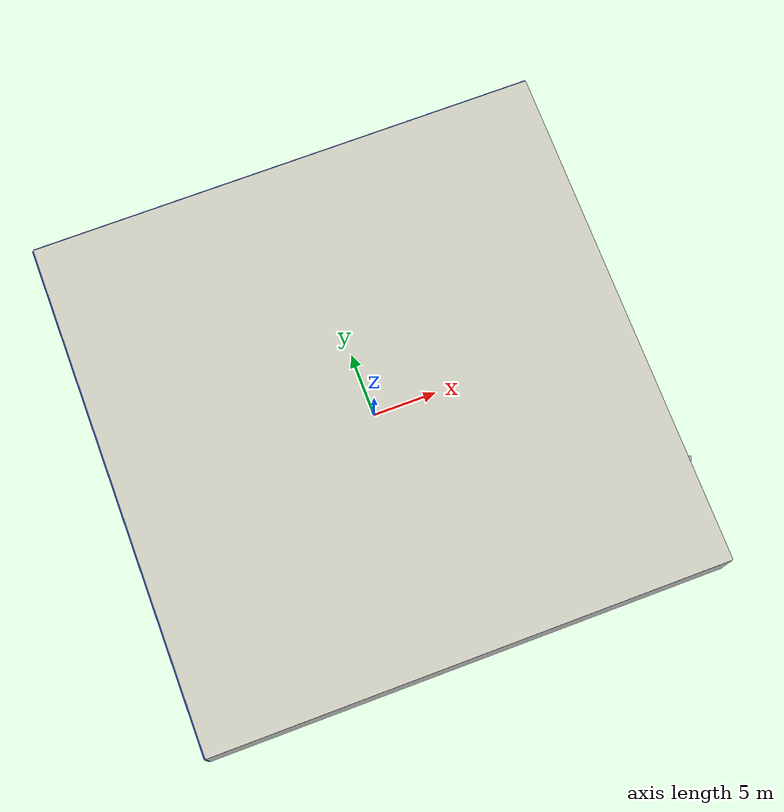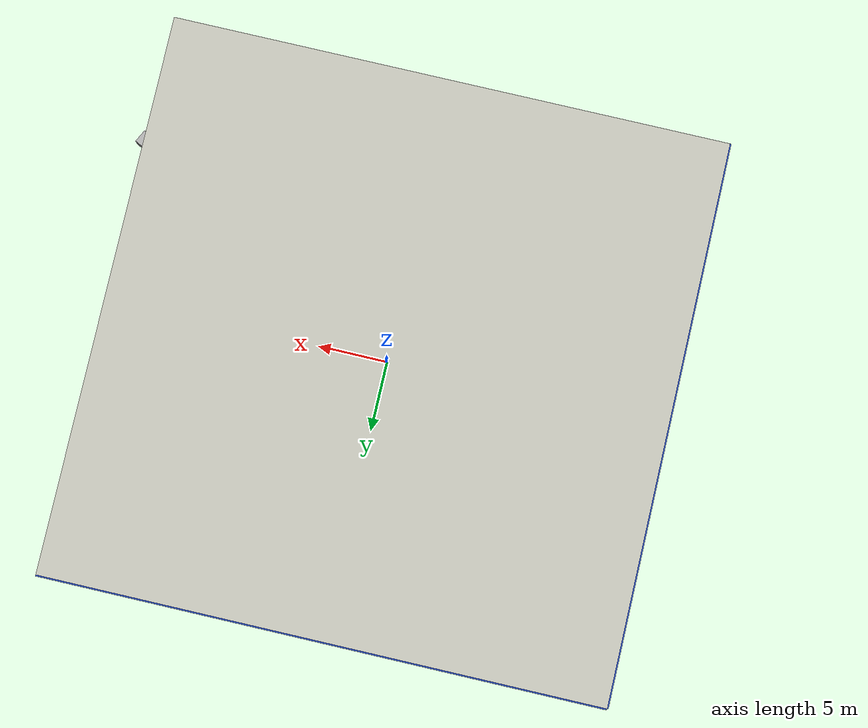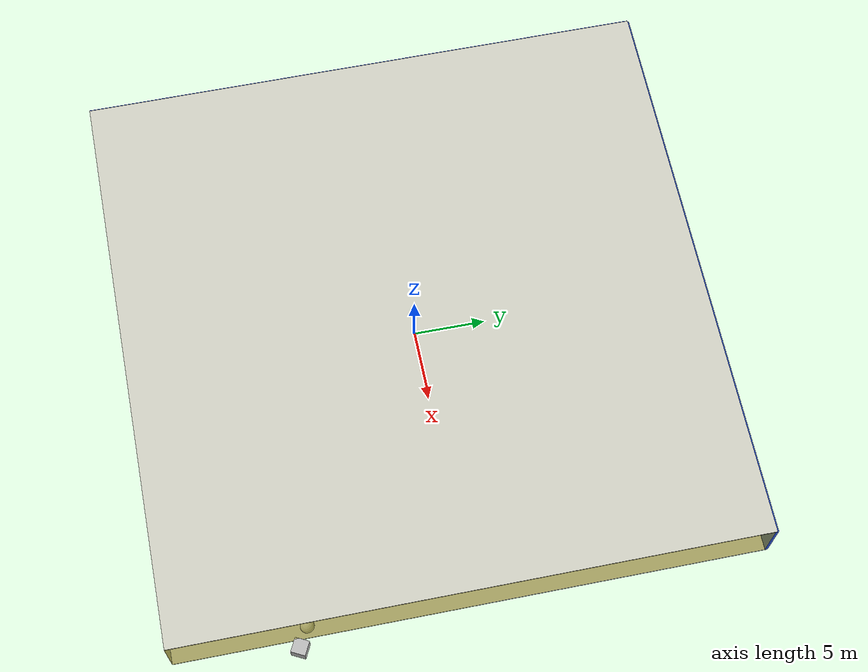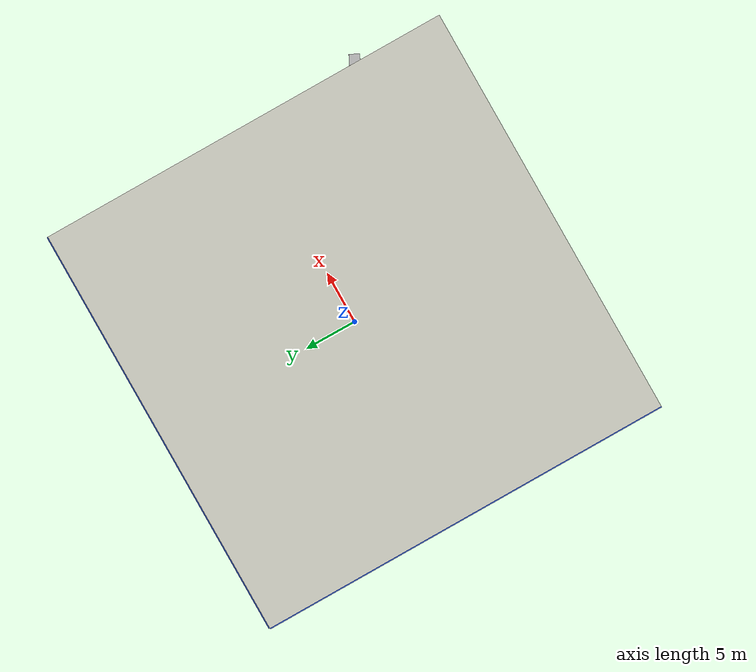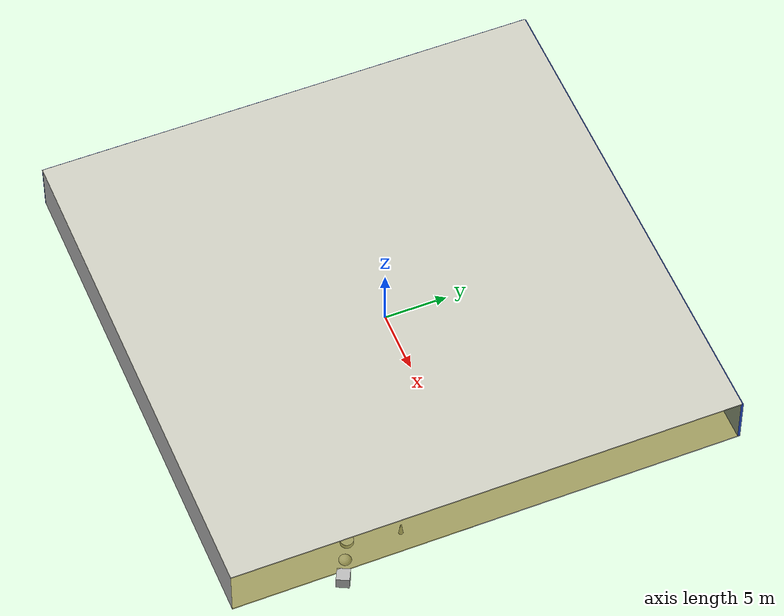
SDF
<sdf version="1.4">
 <world name="default">
  <physics type="ode">
   <max_step_size>0.001</max_step_size>
   <real_time_factor>1</real_time_factor>
   <real_time_update_rate>1000</real_time_update_rate>
   <gravity>0 0 -9.8</gravity>
  </physics>
  <scene><ambient>0.4 0.4 0.4 1</ambient><background>0.7 0.7 0.7 1</background><shadows>1</shadows></scene>
  <model name="Surrounding">
   <static>1</static>
   <link name="Ceiling">
    <collision name="Ceiling_Collision"><geometry><box><size>40 40 0.1</size></box></geometry></collision>
    <visual name="Ceiling_Visual">
     <geometry><box><size>40 40 0.1</size></box></geometry>
     <material>
      <script><uri>file://media/materials/scripts/gazebo.material</uri><name>Gazebo/PaintedWall</name></script>
     </material>
    </visual>
    <pose>0 0 4.05 0 0 0</pose>
   </link>
   <link name="Wall_South">
    <collision name="Wall_South_Collision">
     <geometry><box><size>40 0 4</size></box></geometry>
     <pose>0 0 2 0 -0 0</pose>
    </collision>
    <visual name="Wall_South_Visual">
     <pose>0 0 2 0 -0 0</pose>
     <geometry><box><size>40 0 4</size></box></geometry>
     <material>
      <script><uri>file://media/materials/scripts/gazebo.material</uri><name>Gazebo/PioneerBody</name></script>
     </material>
    </visual>
    <velocity_decay><linear>0</linear><angular>0</angular></velocity_decay>
    <pose>0 -20 0 0 -0 0</pose>
   </link>
   <link name="Wall_East">
    <collision name="Wall_21_Collision">
     <geometry><box><size>40 0 4</size></box></geometry>
     <pose>0 0 2 0 -0 0</pose>
    </collision>
    <visual name="Wall_21_Visual">
     <pose>0 0 2 0 -0 0</pose>
     <geometry><box><size>40 0 4</size></box></geometry>
     <material>
      <script>
       <uri>file://media/materials/scripts/gazebo.material</uri>
       <name>Gazebo/YellowTransparent</name>
      </script>
     </material>
    </visual>
    <velocity_decay><linear>0</linear><angular>0</angular></velocity_decay>
    <pose>20 0 0 0 -0 1.5708</pose>
   </link>
   <link name="Wall_North">
    <collision name="Wall_22_Collision">
     <geometry><box><size>40 0.2 4</size></box></geometry>
     <pose>0 0 2 0 -0 0</pose>
    </collision>
    <visual name="Wall_22_Visual">
     <pose>0 0 2 0 -0 0</pose>
     <geometry><box><size>40 0.2 4</size></box></geometry>
     <material>
      <script><uri>file://media/materials/scripts/gazebo.material</uri><name>Gazebo/BlueGlow</name></script>
     </material>
    </visual>
    <velocity_decay><linear>0</linear><angular>0</angular></velocity_decay>
    <pose>0 20 0 0 -0 0</pose>
   </link>
   <link name="Wall_West">
    <collision name="Wall_23_Collision">
     <geometry><box><size>40 0.2 4</size></box></geometry>
     <pose>0 0 2 0 -0 0</pose>
    </collision>
    <visual name="Wall_23_Visual">
     <pose>0 0 2 0 -0 0</pose>
     <geometry><box><size>40 0.2 4</size></box></geometry>
     <material>
      <script><uri>file://media/materials/scripts/gazebo.material</uri><name>Gazebo/BlueGlow</name></script>
     </material>
    </visual>
    <velocity_decay><linear>0</linear><angular>0</angular></velocity_decay>
    <pose>-20 0 0 0 0 -1.5708</pose>
   </link>
   <link name="Ground_link">
    <collision name="collision">
     <pose>0 0 .05 0 -0 0</pose>
     <geometry><box><size>40 40 0.1</size></box></geometry>
    </collision>
    <visual name="visual">
     <pose>0 0 .05 0 -0 0</pose>
     <geometry><box><size>40 40 0.1</size></box></geometry>
     <material>
      <script><uri>file://media/materials/scripts/gazebo.material</uri><name>Gazebo/LightOff</name></script>
     </material>
    </visual>
   </link>
   <static>1</static>
  </model>
  <spherical_coordinates>
   <surface_model>EARTH_WGS84</surface_model>
   <latitude_deg>0</latitude_deg>
   <longitude_deg>0</longitude_deg>
   <elevation>0</elevation>
   <heading_deg>0</heading_deg>
  </spherical_coordinates>
  <light name="lightball_0" type="diffuse">
   <diffuse>0.8 0.8 0.8 1</diffuse>
   <specular>0.2 0.2 0.2 1</specular>
   <attenuation>
    <range>100</range>
    <constant>0.7</constant>
    <linear>0.01</linear>
    <quadratic>0.001</quadratic>
   </attenuation>
   <direction>-0.5 0.1 -0.9</direction>
   <pose>-3.59978759922 16.1122921972 3.73947283675 0 0 0</pose>
  </light>
  <light name="lightball_1" type="diffuse">
   <diffuse>0.8 0.8 0.8 1</diffuse>
   <specular>0.2 0.2 0.2 1</specular>
   <attenuation>
    <range>100</range>
    <constant>0.7</constant>
    <linear>0.01</linear>
    <quadratic>0.001</quadratic>
   </attenuation>
   <direction>-0.5 0.1 -0.9</direction>
   <pose>4.82223695353 -14.1909070021 2.25515417133 0 0 0</pose>
  </light>
  <light name="lightball_2" type="diffuse">
   <diffuse>0.8 0.8 0.8 1</diffuse>
   <specular>0.2 0.2 0.2 1</specular>
   <attenuation>
    <range>100</range>
    <constant>0.7</constant>
    <linear>0.01</linear>
    <quadratic>0.001</quadratic>
   </attenuation>
   <direction>-0.5 0.1 -0.9</direction>
   <pose>-14.6952027911 14.0551638574 1.46375408794 0 0 0</pose>
  </light>
  <light name="lightball_3" type="diffuse">
   <diffuse>0.8 0.8 0.8 1</diffuse>
   <specular>0.2 0.2 0.2 1</specular>
   <attenuation>
    <range>100</range>
    <constant>0.7</constant>
    <linear>0.01</linear>
    <quadratic>0.001</quadratic>
   </attenuation>
   <direction>-0.5 0.1 -0.9</direction>
   <pose>7.41868505287 -14.341333114 3.70472558847 0 0 0</pose>
  </light>
  <light name="lightball_4" type="diffuse">
   <diffuse>0.8 0.8 0.8 1</diffuse>
   <specular>0.2 0.2 0.2 1</specular>
   <attenuation>
    <range>100</range>
    <constant>0.7</constant>
    <linear>0.01</linear>
    <quadratic>0.001</quadratic>
   </attenuation>
   <direction>-0.5 0.1 -0.9</direction>
   <pose>17.93685085 -11.9155925888 2.69207705803 0 0 0</pose>
  </light>
  <light name="lightball_5" type="diffuse">
   <diffuse>0.8 0.8 0.8 1</diffuse>
   <specular>0.2 0.2 0.2 1</specular>
   <attenuation>
    <range>100</range>
    <constant>0.7</constant>
    <linear>0.01</linear>
    <quadratic>0.001</quadratic>
   </attenuation>
   <direction>-0.5 0.1 -0.9</direction>
   <pose>-2.1729763775 19.6024881292 2.35108397031 0 0 0</pose>
  </light>
  <light name="lightball_6" type="diffuse">
   <diffuse>0.8 0.8 0.8 1</diffuse>
   <specular>0.2 0.2 0.2 1</specular>
   <attenuation>
    <range>100</range>
    <constant>0.7</constant>
    <linear>0.01</linear>
    <quadratic>0.001</quadratic>
   </attenuation>
   <direction>-0.5 0.1 -0.9</direction>
   <pose>-10.1486709801 -13.8378295322 0.94504478266 0 0 0</pose>
  </light>
  <light name="lightball_7" type="diffuse">
   <diffuse>0.8 0.8 0.8 1</diffuse>
   <specular>0.2 0.2 0.2 1</specular>
   <attenuation>
    <range>100</range>
    <constant>0.7</constant>
    <linear>0.01</linear>
    <quadratic>0.001</quadratic>
   </attenuation>
   <direction>-0.5 0.1 -0.9</direction>
   <pose>6.0609115139 -10.2017921867 0.517580330567 0 0 0</pose>
  </light>
  <light name="lightball_8" type="diffuse">
   <diffuse>0.8 0.8 0.8 1</diffuse>
   <specular>0.2 0.2 0.2 1</specular>
   <attenuation>
    <range>100</range>
    <constant>0.7</constant>
    <linear>0.01</linear>
    <quadratic>0.001</quadratic>
   </attenuation>
   <direction>-0.5 0.1 -0.9</direction>
   <pose>-4.13397346651 -19.9605384463 0.818124389056 0 0 0</pose>
  </light>
  <light name="lightball_9" type="diffuse">
   <diffuse>0.8 0.8 0.8 1</diffuse>
   <specular>0.2 0.2 0.2 1</specular>
   <attenuation>
    <range>100</range>
    <constant>0.7</constant>
    <linear>0.01</linear>
    <quadratic>0.001</quadratic>
   </attenuation>
   <direction>-0.5 0.1 -0.9</direction>
   <pose>19.7161191291 -8.50390620736 1.66974048545 0 0 0</pose>
  </light>
  <include><uri>model://cabinet</uri><pose>-17.8643057234 -9.61900589071 0 0 0 1.55541438049</pose></include>
  <include><uri>model://table</uri><pose>-16.9405882564 -1.8915181108 0 0 0 1.67322939616</pose></include>
  <include><uri>model://table</uri><pose>-12.2219160333 -10.4995190361 0 0 0 0.586495613262</pose></include>
  <include>
   <uri>model://textured_shapes</uri>
   <pose>-12.5940953509 -7.84925695456 0 0 0 1.25948185113</pose>
  </include>
  <include><uri>model://table</uri><pose>-11.5949227562 -5.28157797482 0 0 0 3.08962456884</pose></include>
  <include>
   <uri>model://construction_cone</uri>
   <pose>-11.8301498259 16.2958429478 0 0 0 1.03612341516</pose>
  </include>
  <include>
   <uri>model://robocup_3Dsim_goal</uri>
   <pose>-5.12231776766 6.81332930067 0 0 0 0.337951023796</pose>
  </include>
  <include><uri>model://table</uri><pose>-5.55329234726 15.9768414123 0 0 0 2.26235329994</pose></include>
  <include><uri>model://cabinet</uri><pose>-4.46301603768 18.6940733187 0 0 0 2.74567145685</pose></include>
  <include><uri>model://cabinet</uri><pose>-2.74402658232 -8.53761774434 0 0 0 2.75933640721</pose></include>
  <include>
   <uri>model://textured_shapes</uri>
   <pose>-3.02462754056 13.2605055827 0 0 0 1.17299649903</pose>
  </include>
  <include>
   <uri>model://construction_cone</uri>
   <pose>0.367983020462 -18.1377400072 0 0 0 2.01215964272</pose>
  </include>
  <include>
   <uri>model://textured_shapes</uri>
   <pose>1.2293364729 -13.8816087245 0 0 0 1.76179875722</pose>
  </include>
  <include><uri>model://cabinet</uri><pose>0.797131618288 4.06551331943 0 0 0 1.6982895484</pose></include>
  <include>
   <uri>model://construction_cone</uri>
   <pose>4.32298874069 -13.7450510424 0 0 0 2.78773838022</pose>
  </include>
  <include>
   <uri>model://textured_shapes</uri>
   <pose>4.52098826444 8.70001671212 0 0 0 1.43407824586</pose>
  </include>
  <include>
   <uri>model://construction_cone</uri>
   <pose>6.45868836637 -10.5999789117 0 0 0 2.68443416459</pose>
  </include>
  <include>
   <uri>model://construction_cone</uri>
   <pose>6.499851378 12.396378949 0 0 0 1.9649806995</pose>
  </include>
  <include><uri>model://table</uri><pose>9.57699747252 9.21205988585 0 0 0 0.65994663824</pose></include>
  <include><uri>model://cabinet</uri><pose>13.2677995249 -8.33150453397 0 0 0 0.725364921636</pose></include>
  <include>
   <uri>model://textured_shapes</uri>
   <pose>19.1922838953 -10.9736206409 0 0 0 1.10334287386</pose>
  </include>
  <include>
   <uri>model://construction_cone</uri>
   <pose>18.5336895959 -6.34791787296 0 0 0 0.511364433389</pose>
  </include>
 </world>
</sdf>

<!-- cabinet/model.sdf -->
<sdf version="1.5">
  <model name="cabinet">
    <static>true</static>
    <link name="cabinet_bottom_plate">
      <inertial>
        <pose>0 0 -1 0 0 0</pose>
        <inertia>
          <ixx>2.050000</ixx>
          <ixy>0</ixy>
          <ixz>0</ixz>
          <iyy>2.050000</iyy>
          <iyz>0</iyz>
          <izz>2.050000</izz>
        </inertia>
        <mass>25.000000</mass>
      </inertial>
      <collision name="cabinet_bottom_plate_geom">
        <pose>0 0 0.010000 0 0 0</pose>
        <geometry>
          <box>
            <size>0.450000 0.450000 0.020000</size>
          </box>
        </geometry>
      </collision>
      <visual name="cabinet_bottom_plate_geom_visual">
        <pose>0 0 0.010000 0 0 0</pose>
        <geometry>
          <box>
            <size>0.450000 0.450000 0.020000</size>
          </box>
        </geometry>
        <material>
          <script>
            <uri>model://media/materials/scripts/gazebo.material</uri>
            <name>Gazebo/Wood</name>
          </script>
        </material>
      </visual>
      <collision name="cabinet_bottom_plate_geom_cabinet_back_plate">
        <pose>0.235000 0 0.510000 0 0 0</pose>
        <geometry>
          <box>
            <size>0.020000 0.450000 1.020000</size>
          </box>
        </geometry>
      </collision>
      <visual name="cabinet_bottom_plate_geom_cabinet_back_plate_visual">
        <pose>0.235000 0 0.510000 0 0 0</pose>
        <geometry>
          <box>
            <size>0.020000 0.450000 1.020000</size>
          </box>
        </geometry>
        <material>
          <script>
            <uri>model://media/materials/scripts/gazebo.material</uri>
            <name>Gazebo/Wood</name>
          </script>
        </material>
      </visual>
      <collision name="cabinet_bottom_plate_geom_cabinet_left_plate">
        <pose>0 0.235000 0.510000 0 0 0</pose>
        <geometry>
          <box>
            <size>0.450000 0.020000 1.020000</size>
          </box>
        </geometry>
      </collision>
      <visual name="cabinet_bottom_plate_geom_cabinet_left_plate_visual">
        <pose>0 0.235000 0.510000 0 0 0</pose>
        <geometry>
          <box>
            <size>0.450000 0.020000 1.020000</size>
          </box>
        </geometry>
        <material>
          <script>
            <uri>model://media/materials/scripts/gazebo.material</uri>
            <name>Gazebo/Wood</name>
          </script>
        </material>
      </visual>
      <collision name="cabinet_bottom_plate_geom_cabinet_middle_plate">
        <pose>0 0 0.510000 0 0 0</pose>
        <geometry>
          <box>
            <size>0.450000 0.450000 0.020000</size>
          </box>
        </geometry>
      </collision>
      <visual name="cabinet_bottom_plate_geom_cabinet_middle_plate_visual">
        <pose>0 0 0.510000 0 0 0</pose>
        <geometry>
          <box>
            <size>0.450000 0.450000 0.020000</size>
          </box>
        </geometry>
        <material>
          <script>
            <uri>model://media/materials/scripts/gazebo.material</uri>
            <name>Gazebo/Wood</name>
          </script>
        </material>
      </visual>
      <collision name="cabinet_bottom_plate_geom_cabinet_right_plate">
        <pose>0 -0.235000 0.510000 0 0 0</pose>
        <geometry>
          <box>
            <size>0.450000 0.020000 1.020000</size>
          </box>
        </geometry>
      </collision>
      <visual name="cabinet_bottom_plate_geom_cabinet_right_plate_visual">
        <pose>0 -0.235000 0.510000 0 0 0</pose>
        <geometry>
          <box>
            <size>0.450000 0.020000 1.020000</size>
          </box>
        </geometry>
        <material>
          <script>
            <uri>model://media/materials/scripts/gazebo.material</uri>
            <name>Gazebo/Wood</name>
          </script>
        </material>
      </visual>
      <collision name="cabinet_bottom_plate_geom_cabinet_top_plate">
        <pose>0 0 1.010000 0 0 0</pose>
        <geometry>
          <box>
            <size>0.450000 0.450000 0.020000</size>
          </box>
        </geometry>
      </collision>
      <visual name="cabinet_bottom_plate_geom_cabinet_top_plate_visual">
        <pose>0 0 1.010000 0 0 0</pose>
        <geometry>
          <box>
            <size>0.450000 0.450000 0.020000</size>
          </box>
        </geometry>
        <material>
          <script>
            <uri>model://media/materials/scripts/gazebo.material</uri>
            <name>Gazebo/Wood</name>
          </script>
        </material>
      </visual>
    </link>
  </model>
</sdf>

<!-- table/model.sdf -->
<sdf version="1.5">
  <model name="table">
    <static>true</static>
    <link name="link">
      <collision name="surface">
        <pose>0 0 1.0 0 0 0</pose>
        <geometry>
          <box>
            <size>1.5 0.8 0.03</size>
          </box>
        </geometry>
        <surface>
          <friction>
            <ode>
              <mu>0.6</mu>
              <mu2>0.6</mu2>
            </ode>
          </friction>
        </surface>
      </collision>
      <visual name="visual1">
        <pose>0 0 1.0 0 0 0</pose>
        <geometry>
          <box>
            <size>1.5 0.8 0.03</size>
          </box>
        </geometry>
        <material>
          <script>
            <uri>model://media/materials/scripts/gazebo.material</uri>
            <name>Gazebo/Wood</name>
          </script>
        </material>
      </visual>
      <collision name="front_left_leg">
        <pose>0.68 0.38 0.5 0 0 0</pose>
        <geometry>
          <cylinder>
            <radius>0.02</radius>
            <length>1.0</length>
          </cylinder>
        </geometry>
      </collision>
      <visual name="front_left_leg">
        <pose>0.68 0.38 0.5 0 0 0</pose>
        <geometry>
          <cylinder>
            <radius>0.02</radius>
            <length>1.0</length>
          </cylinder>
        </geometry>
        <material>
          <script>
            <uri>model://media/materials/scripts/gazebo.material</uri>
            <name>Gazebo/Grey</name>
          </script>
        </material>
      </visual>
      <collision name="front_right_leg">
        <pose>0.68 -0.38 0.5 0 0 0</pose>
        <geometry>
          <cylinder>
            <radius>0.02</radius>
            <length>1.0</length>
          </cylinder>
        </geometry>
      </collision>
      <visual name="front_right_leg">
        <pose>0.68 -0.38 0.5 0 0 0</pose>
        <geometry>
          <cylinder>
            <radius>0.02</radius>
            <length>1.0</length>
          </cylinder>
        </geometry>
        <material>
          <script>
            <uri>model://media/materials/scripts/gazebo.material</uri>
            <name>Gazebo/Grey</name>
          </script>
        </material>
      </visual>
      <collision name="back_right_leg">
        <pose>-0.68 -0.38 0.5 0 0 0</pose>
        <geometry>
          <cylinder>
            <radius>0.02</radius>
            <length>1.0</length>
          </cylinder>
        </geometry>
      </collision>
      <visual name="back_right_leg">
        <pose>-0.68 -0.38 0.5 0 0 0</pose>
        <geometry>
          <cylinder>
            <radius>0.02</radius>
            <length>1.0</length>
          </cylinder>
        </geometry>
        <material>
          <script>
            <uri>model://media/materials/scripts/gazebo.material</uri>
            <name>Gazebo/Grey</name>
          </script>
        </material>
      </visual>
      <collision name="back_left_leg">
        <pose>-0.68 0.38 0.5 0 0 0</pose>
        <geometry>
          <cylinder>
            <radius>0.02</radius>
            <length>1.0</length>
          </cylinder>
        </geometry>
      </collision>
      <visual name="back_left_leg">
        <pose>-0.68 0.38 0.5 0 0 0</pose>
        <geometry>
          <cylinder>
            <radius>0.02</radius>
            <length>1.0</length>
          </cylinder>
        </geometry>
        <material>
          <script>
            <uri>model://media/materials/scripts/gazebo.material</uri>
            <name>Gazebo/Grey</name>
          </script>
        </material>
      </visual>
    </link>
  </model>
</sdf>

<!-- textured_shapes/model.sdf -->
<sdf version="1.6">
  <model name="textured_shapes">
    <pose>0 0 0.5 0 0 0</pose>
    <link name="box">
      <pose>0 -1.5 0 0 0 0</pose>
      <collision name="collision">
        <geometry>
          <box>
            <size>1 1 1</size>
          </box>
        </geometry>
      </collision>
      <visual name="visual">
        <geometry>
          <box>
            <size>1 1 1</size>
          </box>
        </geometry>
        <material>
          <script>
            <uri>model://../model_source/models/textured_shapes/materials/scripts</uri>
            <uri>model://../model_source/models/textured_shapes/materials/textures</uri>
            <name>TexturedShape/Squares</name>
          </script>
        </material>
      </visual>
    </link>
    <link name="sphere">
      <collision name="collision">
        <geometry>
          <sphere>
            <radius>0.5</radius>
          </sphere>
        </geometry>
      </collision>
      <visual name="visual">
        <geometry>
          <sphere>
            <radius>0.5</radius>
          </sphere>
        </geometry>
        <material>
          <script>
            <uri>model://../model_source/models/textured_shapes/materials/scripts</uri>
            <uri>model://../model_source/models/textured_shapes/materials/textures</uri>
            <name>TexturedShape/Squares</name>
          </script>
        </material>
      </visual>
    </link>
    <link name="cylinder">
      <pose>0 1.5 0 0 0 0</pose>
      <collision name="collision">
        <geometry>
          <cylinder>
            <radius>0.5</radius>
            <length>1</length>
          </cylinder>
        </geometry>
      </collision>
      <visual name="visual">
        <geometry>
          <cylinder>
            <radius>0.5</radius>
            <length>1</length>
          </cylinder>
        </geometry>
        <material>
          <script>
            <uri>model://../model_source/models/textured_shapes/materials/scripts</uri>
            <uri>model://../model_source/models/textured_shapes/materials/textures</uri>
            <name>TexturedShape/Squares</name>
          </script>
        </material>
      </visual>
    </link>
  </model>
</sdf>

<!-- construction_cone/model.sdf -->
<sdf version="1.5">
  <model name="Construction Cone">
    <link name="link">
      <collision name="collision">
        <geometry>
          <mesh>
            <scale>10 10 10</scale>
            <uri>file://isr-testbed/construction_cone/meshes/construction_cone.dae</uri>
          </mesh>
        </geometry>
      </collision>
      <visual name="visual">
        <geometry>
          <mesh>
            <scale>10 10 10</scale>
            <uri>file://isr-testbed/construction_cone/meshes/construction_cone.dae</uri>
          </mesh>
        </geometry>
      </visual>
    </link>
  </model>
</sdf>

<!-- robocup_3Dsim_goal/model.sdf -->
<sdf version="1.5">
  <model name="robocup_3d_goal">
    <static>true</static>
    <link name="left_post">
      <pose>0 1.05 0.45 0 0 0</pose>
      <collision name="collision">
        <geometry>
          <cylinder>
            <radius>0.05</radius>
            <length>0.9</length>
          </cylinder>
        </geometry>
      </collision>
      <visual name="visual">
        <geometry>
          <cylinder>
            <radius>0.05</radius>
            <length>0.9</length>
          </cylinder>
        </geometry>
        <material>
          <script>
            <uri>file://media/materials/scripts/gazebo.material</uri>
            <name>Gazebo/ZincYellow</name>
          </script>
        </material>
      </visual>
    </link>
    <link name="left_support_horiz_lower">
      <pose>0.30 1.05 0.01 0 0 0</pose>
      <collision name="collision">
        <geometry>
          <box>
            <size>0.50 0.02 0.02</size>
          </box>
        </geometry>
      </collision>
      <visual name="visual">
        <geometry>
          <box>
            <size>0.50 0.02 0.02</size>
          </box>
        </geometry>
        <material>
          <script>
            <uri>file://media/materials/scripts/gazebo.material</uri>
            <name>Gazebo/White</name>
          </script>
        </material>
      </visual>
    </link>
    <link name="left_support_horiz_upper">
      <pose>0.30 1.05 0.79 0 0 0</pose>
      <collision name="collision">
        <geometry>
          <box>
            <size>0.50 0.02 0.02</size>
          </box>
        </geometry>
      </collision>
      <visual name="visual">
        <geometry>
          <box>
            <size>0.50 0.02 0.02</size>
          </box>
        </geometry>
        <material>
          <script>
            <uri>file://media/materials/scripts/gazebo.material</uri>
            <name>Gazebo/White</name>
          </script>
        </material>
      </visual>
    </link>
    <link name="left_support_vertical">
      <pose>0.56 1.05 0.4 0 1.5708 0</pose>
      <collision name="collision">
        <geometry>
          <box>
            <size>0.80 0.02 0.02</size>
          </box>
        </geometry>
      </collision>
      <visual name="visual">
        <geometry>
          <box>
            <size>0.80 0.02 0.02</size>
          </box>
        </geometry>
        <material>
          <script>
            <uri>file://media/materials/scripts/gazebo.material</uri>
            <name>Gazebo/White</name>
          </script>
        </material>
      </visual>
    </link>
    <link name="right_support_horiz_lower">
      <pose>0.30 -1.05 0.01 0 0 0</pose>
      <collision name="collision">
        <geometry>
          <box>
            <size>0.50 0.02 0.02</size>
          </box>
        </geometry>
      </collision>
      <visual name="visual">
        <geometry>
          <box>
            <size>0.50 0.02 0.02</size>
          </box>
        </geometry>
        <material>
          <script>
            <uri>file://media/materials/scripts/gazebo.material</uri>
            <name>Gazebo/White</name>
          </script>
        </material>
      </visual>
    </link>
    <link name="right_support_horiz_upper">
      <pose>0.30 -1.05 0.79 0 0 0</pose>
      <collision name="collision">
        <geometry>
          <box>
            <size>0.50 0.02 0.02</size>
          </box>
        </geometry>
      </collision>
      <visual name="visual">
        <geometry>
          <box>
            <size>0.50 0.02 0.02</size>
          </box>
        </geometry>
        <material>
          <script>
            <uri>file://media/materials/scripts/gazebo.material</uri>
            <name>Gazebo/White</name>
          </script>
        </material>
      </visual>
    </link>
    <link name="right_support_vertical">
      <pose>0.56 -1.05 0.4 0 1.5708 0</pose>
      <collision name="collision">
        <geometry>
          <box>
            <size>0.80 0.02 0.02</size>
          </box>
        </geometry>
      </collision>
      <visual name="visual">
        <geometry>
          <box>
            <size>0.80 0.02 0.02</size>
          </box>
        </geometry>
        <material>
          <script>
            <uri>file://media/materials/scripts/gazebo.material</uri>
            <name>Gazebo/White</name>
          </script>
        </material>
      </visual>
    </link>
    <link name="center_support_horiz_lower">
      <pose>0.56 0 0.01 0 1.5708 0</pose>
      <collision name="collision">
        <geometry>
          <box>
            <size>0.02 2.08 0.02</size>
          </box>
        </geometry>
      </collision>
      <visual name="visual">
        <geometry>
          <box>
            <size>0.02 2.08 0.02</size>
          </box>
        </geometry>
        <material>
          <script>
            <uri>file://media/materials/scripts/gazebo.material</uri>
            <name>Gazebo/White</name>
          </script>
        </material>
      </visual>
    </link>
    <link name="center_support_horiz_upper">
      <pose>0.56 0 0.79 0 1.5708 0</pose>
      <collision name="collision">
        <geometry>
          <box>
            <size>0.02 2.08 0.02</size>
          </box>
        </geometry>
      </collision>
      <visual name="visual">
        <geometry>
          <box>
            <size>0.02 2.08 0.02</size>
          </box>
        </geometry>
        <material>
          <script>
            <uri>file://media/materials/scripts/gazebo.material</uri>
            <name>Gazebo/White</name>
          </script>
        </material>
      </visual>
    </link>
    <link name="right_post">
      <pose>0 -1.05 0.45 0 0 0</pose>
      <collision name="collision">
        <geometry>
          <cylinder>
            <radius>0.05</radius>
            <length>0.9</length>
          </cylinder>
        </geometry>
      </collision>
      <visual name="visual">
        <geometry>
          <cylinder>
            <radius>0.05</radius>
            <length>0.9</length>
          </cylinder>
        </geometry>
        <material>
          <script>
            <uri>file://media/materials/scripts/gazebo.material</uri>
            <name>Gazebo/ZincYellow</name>
          </script>
        </material>
      </visual>
    </link>
    <link name="crossbar">
      <pose>0 0 0.85 1.57 1.57 0</pose>
      <collision name="collision">
        <geometry>
          <cylinder>
            <radius>0.05</radius>
            <length>2.0</length>
          </cylinder>
        </geometry>
      </collision>
      <visual name="visual">
        <geometry>
          <cylinder>
            <radius>0.05</radius>
            <length>2.0</length>
          </cylinder>
        </geometry>
        <material>
          <script>
            <uri>file://media/materials/scripts/gazebo.material</uri>
            <name>Gazebo/ZincYellow</name>
          </script>
        </material>
      </visual>
    </link>
    <link name="center_net">
      <pose>0.56 0 0.40 0 0 0</pose>
      <collision name="collision">
        <geometry>
          <box>
            <size>0.01 2.1 0.80</size>
          </box>
        </geometry>
      </collision>
      <visual name="visual">
        <geometry>
          <box>
            <size>0.01 2.1 0.80</size>
          </box>
        </geometry>
        <material>
          <script>
            <uri>model://../model_source/models/robocup09_spl_field/materials/scripts/</uri>
            <uri>model://../model_source/models/robocup09_spl_field/materials/textures/</uri>
            <name>RoboCup/Net</name>
          </script>
        </material>
      </visual>
    </link>
    <link name="left_net">
      <pose>0.30 1.05 0.40 0 0 0</pose>
      <collision name="collision">
        <geometry>
          <box>
            <size>0.50 0.01 0.76</size>
          </box>
        </geometry>
      </collision>
      <visual name="visual">
        <geometry>
          <box>
            <size>0.50 0.01 0.76</size>
          </box>
        </geometry>
        <material>
          <script>
            <uri>model://../model_source/models/robocup09_spl_field/materials/scripts/</uri>
            <uri>model://../model_source/models/robocup09_spl_field/materials/textures/</uri>
            <name>RoboCup/Net</name>
          </script>
        </material>
      </visual>
    </link>
    <link name="right_net">
      <pose>0.30 -1.05 0.40 0 0 0</pose>
      <collision name="collision">
        <geometry>
          <box>
            <size>0.50 0.01 0.76</size>
          </box>
        </geometry>
      </collision>
      <visual name="visual">
        <geometry>
          <box>
            <size>0.50 0.01 0.76</size>
          </box>
        </geometry>
        <material>
          <script>
            <uri>model://../model_source/models/robocup09_spl_field/materials/scripts/</uri>
            <uri>model://../model_source/models/robocup09_spl_field/materials/textures/</uri>
            <name>RoboCup/Net</name>
          </script>
        </material>
      </visual>
    </link>
  </model>
</sdf>
